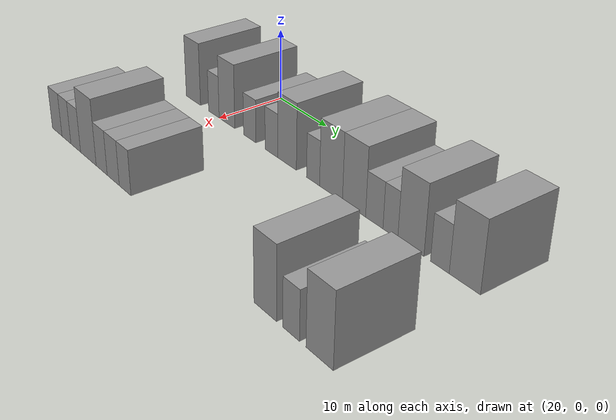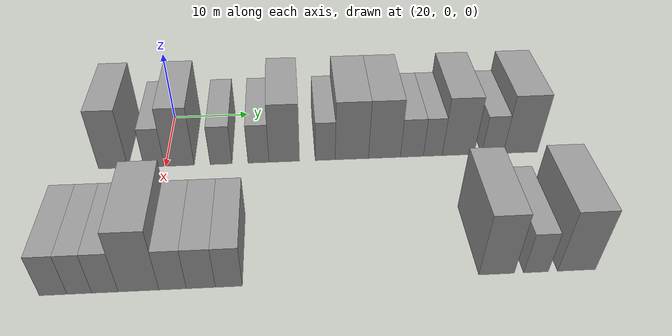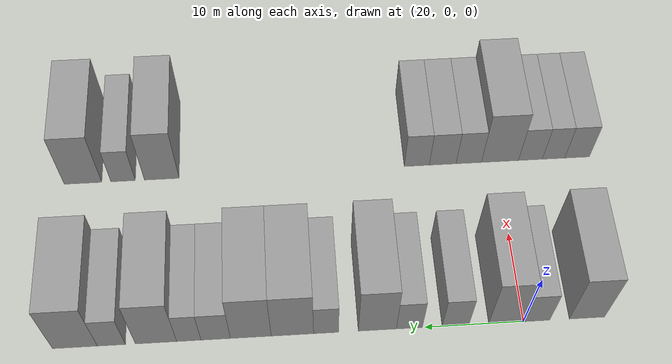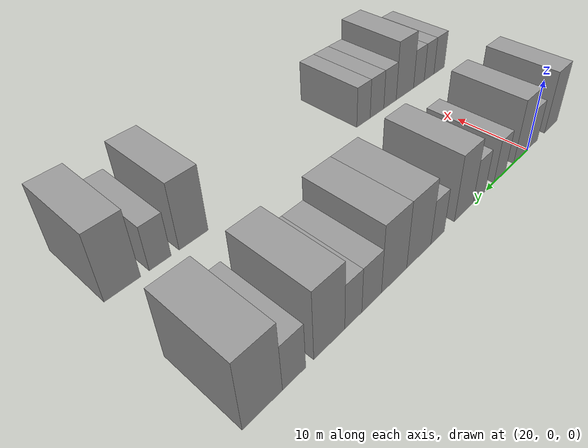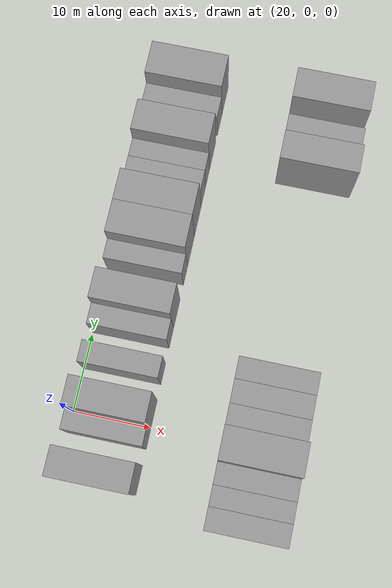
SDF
<sdf version="1.6">
 <world name="default">
  <model name="building_47">
   <static>1</static>
   <pose>25.0000 -6.4821 0 0.000000 0.000000 0.000000</pose>
   <link name="link">
    <pose>0 0 4.50 0 0 0</pose>
    <collision name="collision"><geometry><box><size>10.0000 3.6127 9.0000</size></box></geometry></collision>
    <visual name="visual">
     <cast_shadows>0</cast_shadows>
     <geometry><box><size>10.0000 3.6127 9.0000</size></box></geometry>
     <material>
      <script>
       <uri>model://grey_wall/materials/scripts</uri>
       <uri>model://grey_wall/materials/textures</uri>
       <name>vrc/grey_wall</name>
      </script>
     </material>
    </visual>
   </link>
  </model>
  <model name="building_48">
   <static>1</static>
   <pose>25.0000 -1.4025 0 0.000000 0.000000 0.000000</pose>
   <link name="link">
    <pose>0 0 3.00 0 0 0</pose>
    <collision name="collision"><geometry><box><size>10.0000 2.5464 6.0000</size></box></geometry></collision>
    <visual name="visual">
     <cast_shadows>0</cast_shadows>
     <geometry><box><size>10.0000 2.5464 6.0000</size></box></geometry>
     <material>
      <script>
       <uri>model://grey_wall/materials/scripts</uri>
       <uri>model://grey_wall/materials/textures</uri>
       <name>vrc/grey_wall</name>
      </script>
     </material>
    </visual>
   </link>
  </model>
  <model name="building_49">
   <static>1</static>
   <pose>25.0000 1.7105 0 0.000000 0.000000 0.000000</pose>
   <link name="link">
    <pose>0 0 4.50 0 0 0</pose>
    <collision name="collision"><geometry><box><size>10.0000 3.6796 9.0000</size></box></geometry></collision>
    <visual name="visual">
     <cast_shadows>0</cast_shadows>
     <geometry><box><size>10.0000 3.6796 9.0000</size></box></geometry>
     <material>
      <script>
       <uri>model://grey_wall/materials/scripts</uri>
       <uri>model://grey_wall/materials/textures</uri>
       <name>vrc/grey_wall</name>
      </script>
     </material>
    </visual>
   </link>
  </model>
  <model name="building_50">
   <static>1</static>
   <pose>25.0000 6.9176 0 0.000000 0.000000 0.000000</pose>
   <link name="link">
    <pose>0 0 3.00 0 0 0</pose>
    <collision name="collision"><geometry><box><size>10.0000 2.7346 6.0000</size></box></geometry></collision>
    <visual name="visual">
     <cast_shadows>0</cast_shadows>
     <geometry><box><size>10.0000 2.7346 6.0000</size></box></geometry>
     <material>
      <script>
       <uri>model://grey_wall/materials/scripts</uri>
       <uri>model://grey_wall/materials/textures</uri>
       <name>vrc/grey_wall</name>
      </script>
     </material>
    </visual>
   </link>
  </model>
  <model name="building_51">
   <static>1</static>
   <pose>25.0000 11.6050 0 0.000000 0.000000 0.000000</pose>
   <link name="link">
    <pose>0 0 3.00 0 0 0</pose>
    <collision name="collision"><geometry><box><size>10.0000 2.6404 6.0000</size></box></geometry></collision>
    <visual name="visual">
     <cast_shadows>0</cast_shadows>
     <geometry><box><size>10.0000 2.6404 6.0000</size></box></geometry>
     <material>
      <script>
       <uri>model://grey_wall/materials/scripts</uri>
       <uri>model://grey_wall/materials/textures</uri>
       <name>vrc/grey_wall</name>
      </script>
     </material>
    </visual>
   </link>
  </model>
  <model name="building_52">
   <static>1</static>
   <pose>25.0000 14.8452 0 0.000000 0.000000 0.000000</pose>
   <link name="link">
    <pose>0 0 4.50 0 0 0</pose>
    <collision name="collision"><geometry><box><size>10.0000 3.8400 9.0000</size></box></geometry></collision>
    <visual name="visual">
     <cast_shadows>0</cast_shadows>
     <geometry><box><size>10.0000 3.8400 9.0000</size></box></geometry>
     <material>
      <script>
       <uri>model://grey_wall/materials/scripts</uri>
       <uri>model://grey_wall/materials/textures</uri>
       <name>vrc/grey_wall</name>
      </script>
     </material>
    </visual>
   </link>
  </model>
  <model name="building_53">
   <static>1</static>
   <pose>25.0000 20.0217 0 0.000000 0.000000 0.000000</pose>
   <link name="link">
    <pose>0 0 3.00 0 0 0</pose>
    <collision name="collision"><geometry><box><size>10.0000 2.5130 6.0000</size></box></geometry></collision>
    <visual name="visual">
     <cast_shadows>0</cast_shadows>
     <geometry><box><size>10.0000 2.5130 6.0000</size></box></geometry>
     <material>
      <script>
       <uri>model://grey_wall/materials/scripts</uri>
       <uri>model://grey_wall/materials/textures</uri>
       <name>vrc/grey_wall</name>
      </script>
     </material>
    </visual>
   </link>
  </model>
  <model name="building_54">
   <static>1</static>
   <pose>25.0000 23.4024 0 0.000000 0.000000 0.000000</pose>
   <link name="link">
    <pose>0 0 4.50 0 0 0</pose>
    <collision name="collision"><geometry><box><size>10.0000 4.2483 9.0000</size></box></geometry></collision>
    <visual name="visual">
     <cast_shadows>0</cast_shadows>
     <geometry><box><size>10.0000 4.2483 9.0000</size></box></geometry>
     <material>
      <script>
       <uri>model://grey_wall/materials/scripts</uri>
       <uri>model://grey_wall/materials/textures</uri>
       <name>vrc/grey_wall</name>
      </script>
     </material>
    </visual>
   </link>
  </model>
  <model name="building_55">
   <static>1</static>
   <pose>25.0000 27.5710 0 0.000000 0.000000 0.000000</pose>
   <link name="link">
    <pose>0 0 4.50 0 0 0</pose>
    <collision name="collision"><geometry><box><size>10.0000 4.0890 9.0000</size></box></geometry></collision>
    <visual name="visual">
     <cast_shadows>0</cast_shadows>
     <geometry><box><size>10.0000 4.0890 9.0000</size></box></geometry>
     <material>
      <script>
       <uri>model://grey_wall/materials/scripts</uri>
       <uri>model://grey_wall/materials/textures</uri>
       <name>vrc/grey_wall</name>
      </script>
     </material>
    </visual>
   </link>
  </model>
  <model name="building_56">
   <static>1</static>
   <pose>25.0000 31.0874 0 0.000000 0.000000 0.000000</pose>
   <link name="link">
    <pose>0 0 3.00 0 0 0</pose>
    <collision name="collision"><geometry><box><size>10.0000 2.9438 6.0000</size></box></geometry></collision>
    <visual name="visual">
     <cast_shadows>0</cast_shadows>
     <geometry><box><size>10.0000 2.9438 6.0000</size></box></geometry>
     <material>
      <script>
       <uri>model://grey_wall/materials/scripts</uri>
       <uri>model://grey_wall/materials/textures</uri>
       <name>vrc/grey_wall</name>
      </script>
     </material>
    </visual>
   </link>
  </model>
  <model name="building_57">
   <static>1</static>
   <pose>25.0000 33.7737 0 0.000000 0.000000 0.000000</pose>
   <link name="link">
    <pose>0 0 3.00 0 0 0</pose>
    <collision name="collision"><geometry><box><size>10.0000 2.4288 6.0000</size></box></geometry></collision>
    <visual name="visual">
     <cast_shadows>0</cast_shadows>
     <geometry><box><size>10.0000 2.4288 6.0000</size></box></geometry>
     <material>
      <script>
       <uri>model://grey_wall/materials/scripts</uri>
       <uri>model://grey_wall/materials/textures</uri>
       <name>vrc/grey_wall</name>
      </script>
     </material>
    </visual>
   </link>
  </model>
  <model name="building_58">
   <static>1</static>
   <pose>25.0000 37.0472 0 0.000000 0.000000 0.000000</pose>
   <link name="link">
    <pose>0 0 4.50 0 0 0</pose>
    <collision name="collision"><geometry><box><size>10.0000 4.1182 9.0000</size></box></geometry></collision>
    <visual name="visual">
     <cast_shadows>0</cast_shadows>
     <geometry><box><size>10.0000 4.1182 9.0000</size></box></geometry>
     <material>
      <script>
       <uri>model://grey_wall/materials/scripts</uri>
       <uri>model://grey_wall/materials/textures</uri>
       <name>vrc/grey_wall</name>
      </script>
     </material>
    </visual>
   </link>
  </model>
  <model name="building_59">
   <static>1</static>
   <pose>25.0000 41.4987 0 0.000000 0.000000 0.000000</pose>
   <link name="link">
    <pose>0 0 3.00 0 0 0</pose>
    <collision name="collision"><geometry><box><size>10.0000 2.7848 6.0000</size></box></geometry></collision>
    <visual name="visual">
     <cast_shadows>0</cast_shadows>
     <geometry><box><size>10.0000 2.7848 6.0000</size></box></geometry>
     <material>
      <script>
       <uri>model://grey_wall/materials/scripts</uri>
       <uri>model://grey_wall/materials/textures</uri>
       <name>vrc/grey_wall</name>
      </script>
     </material>
    </visual>
   </link>
  </model>
  <model name="building_60">
   <static>1</static>
   <pose>25.0000 45.1149 0 0.000000 0.000000 0.000000</pose>
   <link name="link">
    <pose>0 0 4.50 0 0 0</pose>
    <collision name="collision"><geometry><box><size>10.0000 4.4474 9.0000</size></box></geometry></collision>
    <visual name="visual">
     <cast_shadows>0</cast_shadows>
     <geometry><box><size>10.0000 4.4474 9.0000</size></box></geometry>
     <material>
      <script>
       <uri>model://grey_wall/materials/scripts</uri>
       <uri>model://grey_wall/materials/textures</uri>
       <name>vrc/grey_wall</name>
      </script>
     </material>
    </visual>
   </link>
  </model>
  <model name="building_148">
   <static>1</static>
   <pose>44.0000 -9.0617 0 0.000000 0.000000 0.000000</pose>
   <link name="link">
    <pose>0 0 3.00 0 0 0</pose>
    <collision name="collision"><geometry><box><size>10.0000 2.7740 6.0000</size></box></geometry></collision>
    <visual name="visual">
     <cast_shadows>0</cast_shadows>
     <geometry><box><size>10.0000 2.7740 6.0000</size></box></geometry>
     <material>
      <script>
       <uri>model://grey_wall/materials/scripts</uri>
       <uri>model://grey_wall/materials/textures</uri>
       <name>vrc/grey_wall</name>
      </script>
     </material>
    </visual>
   </link>
  </model>
  <model name="building_149">
   <static>1</static>
   <pose>44.0000 -6.4224 0 0.000000 0.000000 0.000000</pose>
   <link name="link">
    <pose>0 0 3.00 0 0 0</pose>
    <collision name="collision"><geometry><box><size>10.0000 2.5044 6.0000</size></box></geometry></collision>
    <visual name="visual">
     <cast_shadows>0</cast_shadows>
     <geometry><box><size>10.0000 2.5044 6.0000</size></box></geometry>
     <material>
      <script>
       <uri>model://grey_wall/materials/scripts</uri>
       <uri>model://grey_wall/materials/textures</uri>
       <name>vrc/grey_wall</name>
      </script>
     </material>
    </visual>
   </link>
  </model>
  <model name="building_150">
   <static>1</static>
   <pose>44.0000 -3.8349 0 0.000000 0.000000 0.000000</pose>
   <link name="link">
    <pose>0 0 3.00 0 0 0</pose>
    <collision name="collision"><geometry><box><size>10.0000 2.6707 6.0000</size></box></geometry></collision>
    <visual name="visual">
     <cast_shadows>0</cast_shadows>
     <geometry><box><size>10.0000 2.6707 6.0000</size></box></geometry>
     <material>
      <script>
       <uri>model://grey_wall/materials/scripts</uri>
       <uri>model://grey_wall/materials/textures</uri>
       <name>vrc/grey_wall</name>
      </script>
     </material>
    </visual>
   </link>
  </model>
  <model name="building_151">
   <static>1</static>
   <pose>44.0000 -0.4311 0 0.000000 0.000000 0.000000</pose>
   <link name="link">
    <pose>0 0 4.50 0 0 0</pose>
    <collision name="collision"><geometry><box><size>10.0000 4.1370 9.0000</size></box></geometry></collision>
    <visual name="visual">
     <cast_shadows>0</cast_shadows>
     <geometry><box><size>10.0000 4.1370 9.0000</size></box></geometry>
     <material>
      <script>
       <uri>model://grey_wall/materials/scripts</uri>
       <uri>model://grey_wall/materials/textures</uri>
       <name>vrc/grey_wall</name>
      </script>
     </material>
    </visual>
   </link>
  </model>
  <model name="building_152">
   <static>1</static>
   <pose>44.0000 3.0463 0 0.000000 0.000000 0.000000</pose>
   <link name="link">
    <pose>0 0 3.00 0 0 0</pose>
    <collision name="collision"><geometry><box><size>10.0000 2.8178 6.0000</size></box></geometry></collision>
    <visual name="visual">
     <cast_shadows>0</cast_shadows>
     <geometry><box><size>10.0000 2.8178 6.0000</size></box></geometry>
     <material>
      <script>
       <uri>model://grey_wall/materials/scripts</uri>
       <uri>model://grey_wall/materials/textures</uri>
       <name>vrc/grey_wall</name>
      </script>
     </material>
    </visual>
   </link>
  </model>
  <model name="building_153">
   <static>1</static>
   <pose>44.0000 5.9424 0 0.000000 0.000000 0.000000</pose>
   <link name="link">
    <pose>0 0 3.00 0 0 0</pose>
    <collision name="collision"><geometry><box><size>10.0000 2.9742 6.0000</size></box></geometry></collision>
    <visual name="visual">
     <cast_shadows>0</cast_shadows>
     <geometry><box><size>10.0000 2.9742 6.0000</size></box></geometry>
     <material>
      <script>
       <uri>model://grey_wall/materials/scripts</uri>
       <uri>model://grey_wall/materials/textures</uri>
       <name>vrc/grey_wall</name>
      </script>
     </material>
    </visual>
   </link>
  </model>
  <model name="building_154">
   <static>1</static>
   <pose>44.0000 8.8183 0 0.000000 0.000000 0.000000</pose>
   <link name="link">
    <pose>0 0 3.00 0 0 0</pose>
    <collision name="collision"><geometry><box><size>10.0000 2.7776 6.0000</size></box></geometry></collision>
    <visual name="visual">
     <cast_shadows>0</cast_shadows>
     <geometry><box><size>10.0000 2.7776 6.0000</size></box></geometry>
     <material>
      <script>
       <uri>model://grey_wall/materials/scripts</uri>
       <uri>model://grey_wall/materials/textures</uri>
       <name>vrc/grey_wall</name>
      </script>
     </material>
    </visual>
   </link>
  </model>
  <model name="building_155">
   <static>1</static>
   <pose>44.0000 36.8995 0 0.000000 0.000000 0.000000</pose>
   <link name="link">
    <pose>0 0 4.50 0 0 0</pose>
    <collision name="collision"><geometry><box><size>10.0000 3.7950 9.0000</size></box></geometry></collision>
    <visual name="visual">
     <cast_shadows>0</cast_shadows>
     <geometry><box><size>10.0000 3.7950 9.0000</size></box></geometry>
     <material>
      <script>
       <uri>model://grey_wall/materials/scripts</uri>
       <uri>model://grey_wall/materials/textures</uri>
       <name>vrc/grey_wall</name>
      </script>
     </material>
    </visual>
   </link>
  </model>
  <model name="building_156">
   <static>1</static>
   <pose>44.0000 41.1245 0 0.000000 0.000000 0.000000</pose>
   <link name="link">
    <pose>0 0 3.00 0 0 0</pose>
    <collision name="collision"><geometry><box><size>10.0000 2.6551 6.0000</size></box></geometry></collision>
    <visual name="visual">
     <cast_shadows>0</cast_shadows>
     <geometry><box><size>10.0000 2.6551 6.0000</size></box></geometry>
     <material>
      <script>
       <uri>model://grey_wall/materials/scripts</uri>
       <uri>model://grey_wall/materials/textures</uri>
       <name>vrc/grey_wall</name>
      </script>
     </material>
    </visual>
   </link>
  </model>
  <model name="building_157">
   <static>1</static>
   <pose>44.0000 45.4911 0 0.000000 0.000000 0.000000</pose>
   <link name="link">
    <pose>0 0 4.50 0 0 0</pose>
    <collision name="collision"><geometry><box><size>10.0000 4.0780 9.0000</size></box></geometry></collision>
    <visual name="visual">
     <cast_shadows>0</cast_shadows>
     <geometry><box><size>10.0000 4.0780 9.0000</size></box></geometry>
     <material>
      <script>
       <uri>model://grey_wall/materials/scripts</uri>
       <uri>model://grey_wall/materials/textures</uri>
       <name>vrc/grey_wall</name>
      </script>
     </material>
    </visual>
   </link>
  </model>
 </world>
</sdf>
